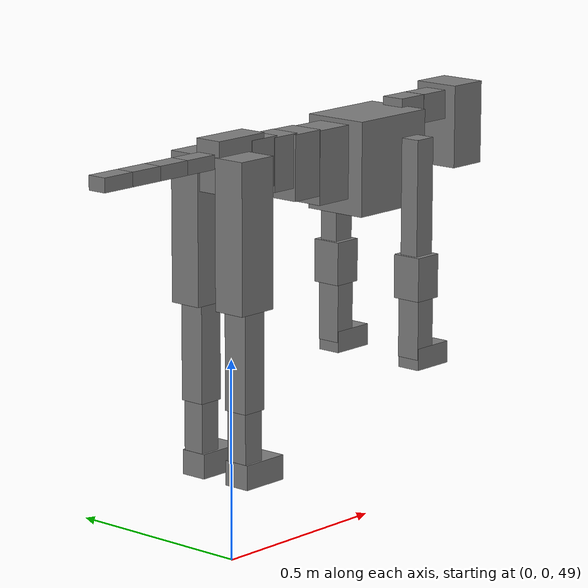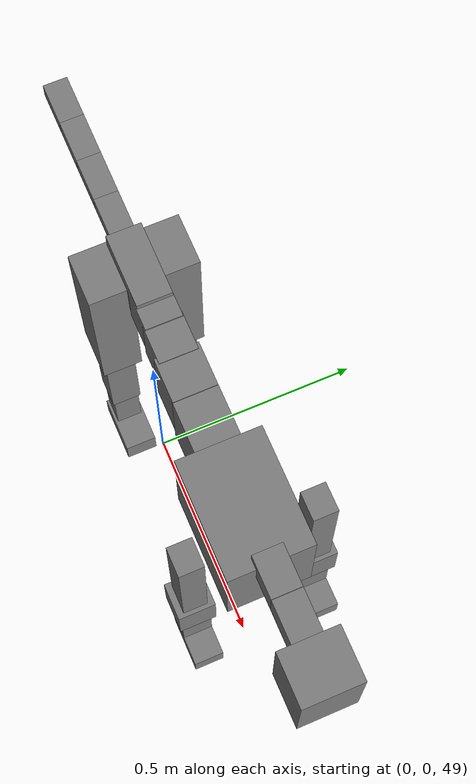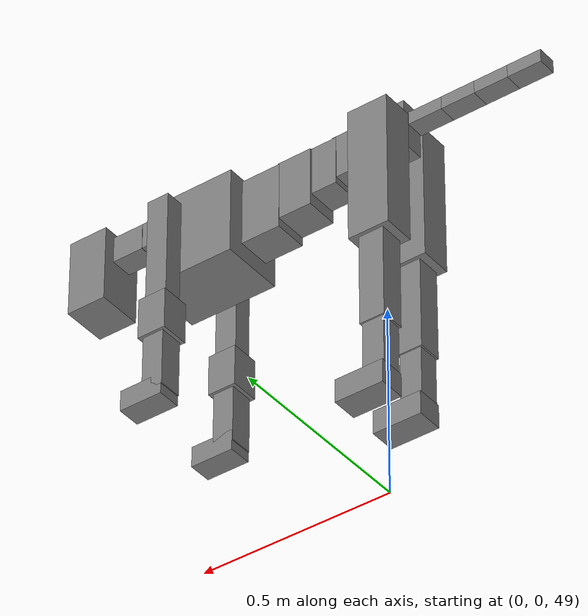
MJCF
<mujoco model="dog">

    <default>
        <joint armature="0.02" stiffness="1" damping="0.2" limited="true"/>
        <geom condim="3" friction="1 0.05 0.05" margin="0.01"/>
        <motor ctrllimited="true" ctrlrange="-1.0 1.0" forcelimited="true" gear="50"/>
    </default>

    <compiler inertiafromgeom="true" angle="radian"/>

    <option timestep="0.016" iterations="50" tolerance="1e-10" solver="Newton" jacobian="dense" cone="pyramidal"/>

    <size nconmax="20000" njmax="60000" nstack="5000000"/>
    <visual>
        <map force="0.1" zfar="30"/>
        <rgba haze="0.15 0.25 0.35 1"/>
        <quality shadowsize="2048"/>
        <global offwidth="800" offheight="800"/>
    </visual>

    <asset>
        <texture type="skybox" builtin="gradient" rgb1="0.3 0.5 0.7" rgb2="0 0 0" width="512" height="512"/>
        <texture name="texplane" type="2d" builtin="checker" rgb1=".2 .3 .4" rgb2=".1 0.15 0.2" width="512" height="512"
                 mark="cross" markrgb=".8 .8 .8"/>
        <texture name="texgeom" type="cube" builtin="flat" mark="cross" width="127" height="1278" rgb1="0.8 0.6 0.4"
                 rgb2="0.8 0.6 0.4" markrgb="1 1 1" random="0.01"/>

        <material name="matplane" reflectance="0.3" texture="texplane" texrepeat="1 1" texuniform="true"/>
        <material name="matgeom" texture="texgeom" texuniform="true" rgba="0.8 0.6 .4 1"/>
    </asset>

    <worldbody>
        <geom name="floor" pos="0 0 0" size="0 0 .25" type="plane" material="matplane" condim="3"/>

        <light directional="false" diffuse=".2 .2 .2" specular="0 0 0" pos="0 0 5" dir="0 0 -1" castshadow="false"/>
        <light mode="targetbodycom" target="torso" directional="false" diffuse=".8 .8 .8" specular="0.3 0.3 0.3"
               pos="0 0 4.0" dir="0 0 -1"/>

        <body name="root" pos="0 0 50">
            <freejoint name="root_1"/>
            <geom type="box" pos="0 0 -0.02" size="0.0774  0.0358  0.063" density="2030"/>

            <body name="spine1" pos="0.054 0 0">
                <joint name="spine1_y" axis="0 1 0" range="0 0.7" limited="true"/>
                <geom type="box" pos="0.02375 0 -0.03" size="0.04375  0.0375  0.05985" density="2030"/>

                <body name="spine2" pos="0.0612 0 0">
                    <joint name="spine2_y" axis="0 1 0" range="-0.15 0.15" limited="true"/>
                    <geom type="box" pos="0.03555  0  -0.04" size="0.04055  0.039  0.06615" density="2030"/>

                    <body name="spine3" pos="0.0730 0 0">
                        <joint name="spine3_y" axis="0 1 0" range="-0.15 0.15" limited="true"/>
                        <geom type="box" pos="0.03555  0  -0.057" size="0.04555  0.0445  0.081" density="2030"/>

                        <body name="spine4" pos="0.0780 0 0">
                            <joint name="spine4_y" axis="0 1 0" range="-0.15 0.15" limited="true"/>
                            <geom type="box" pos="0.05265  0  -0.07" size="0.05265  0.045  0.09135" density="2030"/>

                            <body name="torso" pos="0.1082 0 0">
                                <joint name="torso_y" axis="0 1 0" range="-0.15 0.15" limited="true"/>
                                <geom type="box" pos="0.11925  0  -0.085" size="0.11925  0.085  0.11745"
                                      density="2030"/>

                                <body name="neck1" pos="0.2160  0   0.0180">
                                    <joint name="neck1_y" axis="0 1 0" range="-1.2  -1" limited="true"/>
                                    <geom type="box" pos="0.0423  0  0" size="0.0423  0.03  0.036" density="2325"/>

                                    <body name="neck2" pos="0.0853  0  0">
                                        <joint name="neck2_y" axis="0 1 0" range="0.1  0" limited="true"/>
                                        <geom type="box" pos="0.0423  0  0" size="0.0423  0.03  0.036" density="2325"/>

                                        <body name="head" pos="0.0853  0  0">
                                            <joint name="head_y" axis="0 1 0" range="-0.3  -0.2" limited="true"/>
                                            <geom type="box" pos="0.0531  0  -0.055" size="0.0531  0.06  0.1044"
                                                  density="4030"/>

                                        </body>
                                    </body>
                                </body>

                                <body name="front_shoulder" pos="0.156  0   -0.0480">
                                    <joint name="front_shoulder_y" axis="0 1 0" range="-1 1.5" limited="true"/>
                                    <geom type="box" pos="0 0.13 -0.1320" size="0.0293  0.0251  0.1587" density="1158"/>
                                    <geom type="box" pos="0 -0.13 -0.1320" size="0.0293  0.0251  0.1587"
                                          density="1158"/>

                                    <body name="front_elbow" pos="0  0  -0.2640">
                                        <joint name="front_elbow_y" axis="0 1 0" range="-2 0" limited="true"/>
                                        <geom type="box" pos="0 0.13 -0.0549" size="0.0376  0.0385  0.0549"
                                              density="1081"/>
                                        <geom type="box" pos="0 -0.13 -0.0549" size="0.0376  0.0385  0.0549"
                                              density="1081"/>

                                        <body name="front_wrist" pos="0  0  -0.1097">
                                            <joint name="front_wrist_y" axis="0 1 0" range="-0.2 0" limited="true"/>
                                            <geom type="box" pos="0 0.13 -0.0685" size="0.0280  0.0311  0.0816"
                                                  density="1664"/>
                                            <geom type="box" pos="0 -0.13 -0.0685" size="0.0280  0.0311  0.0816"
                                                  density="1664"/>

                                            <body name="front_finger_end" pos="0  0  -0.1369">
                                                <joint name="front_finger_y" axis="0 1 0" range="-0.4 1"
                                                       limited="true"/>
                                                <geom type="box" pos="0.0311  0.13  -0.0126"
                                                      size="0.0570  0.0311  0.0276" density="1515"/>
                                                <geom type="box" pos="0.0311  -0.13  -0.0126"
                                                      size="0.0570  0.0311  0.0276" density="1515"/>

                                            </body>

                                        </body>
                                    </body>
                                </body>

                            </body>
                        </body>
                    </body>
                </body>
            </body>

            <body name="back_hip" pos="-0.03 0 -0.018">
                <joint name="back_hip_y" axis="0 1 0" range="-1.5 0.3" limited="true"/>
                <geom type="box" pos="0 0.07 -0.1605" size="0.0540  0.0423  0.1833" density="1154"/>
                <geom type="box" pos="0 -0.07 -0.1605" size="0.0540  0.0423  0.1833" density="1154"/>

                <body name="back_knee" pos="0  0  -0.3210">
                    <joint name="back_knee_y" axis="0 1 0" range="0 2.8" limited="true"/>
                    <geom type="box" pos="0 0.07 -0.1250" size="0.0327  0.0323  0.1405" density="1227"/>
                    <geom type="box" pos="0 -0.07 -0.1250" size="0.0327  0.0323  0.1405" density="1227"/>

                    <body name="back_ankle" pos="0  0  -0.2499">
                        <joint name="back_ankle_y" axis="0 1 0" range="-2.2 0" limited="true"/>
                        <geom type="box" pos="0 0.07 -0.0776" size="0.0284  0.0284  0.0888" density="1284"/>
                        <geom type="box" pos="0 -0.07 -0.0776" size="0.0284  0.0284  0.0888" density="1284"/>

                        <body name="back_toe_end" pos="0  0  -0.1552">
                            <joint name="back_toe_y" axis="0 1 0" range="-0.4 1" limited="true"/>
                            <geom type="box" pos="0.0346  0.07  -0.0157" size="0.0634  0.0346  0.0307" density="1515"/>
                            <geom type="box" pos="0.0346  -0.07  -0.0157" size="0.0634  0.0346  0.0307" density="1515"/>

                        </body>
                    </body>
                </body>
            </body>

            <body name="tail1" pos="-0.074 0 -0.006">
                <joint name="tail1_y" axis="0 1 0" range="-0.2 0.2" limited="true"/>
                <geom type="box" pos="-0.0536  0  0" size="0.045  0.025  0.0175" density="1587"/>

                <body name="tail2" pos="-0.09 0 0">
                    <joint name="tail2_y" axis="0 1 0" range="-0.2 0.2" limited="true"/>
                    <geom type="box" pos="-0.0536  0  0" size="0.045  0.025  0.0175" density="1587"/>

                    <body name="tail3" pos="-0.09 0 0">
                        <joint name="tail3_y" axis="0 1 0" range="-0.2 0.2" limited="true"/>
                        <geom type="box" pos="-0.0536  0  0" size="0.045  0.025  0.0175" density="1587"/>

                        <body name="tail4" pos="-0.09 0 0">
                            <joint name="tail4_y" axis="0 1 0" range="-0.2 0.2" limited="true"/>
                            <geom type="box" pos="-0.0536  0  0" size="0.045  0.025  0.0175" density="1587"/>

                        </body>
                    </body>
                </body>
            </body>
        </body>
    </worldbody>

    <actuator>
        <motor joint="spine1_y" forcerange="-150 150     "/>
        <motor joint="spine2_y" forcerange="-150 150     "/>
        <motor joint="spine3_y" forcerange="-150 150     "/>
        <motor joint="spine4_y" forcerange="-150 150     "/>
        <motor joint="torso_y" forcerange="-150 150     "/>
        <motor joint="neck1_y" forcerange="-100 100       "/>
        <motor joint="neck2_y" forcerange="-100 100       "/>
        <motor joint="head_y" forcerange="-150 150       "/>
        <motor joint="front_shoulder_y" forcerange="-128.55 138.54"/>
        <motor joint="front_elbow_y" forcerange="-192.20 187.72"/>
        <motor joint="front_wrist_y" forcerange="-135.66 113.39"/>
        <motor joint="front_finger_y" forcerange="-85.49 40.37"/>
        <motor joint="back_hip_y" forcerange="-391.13 373.45"/>
        <motor joint="back_knee_y" forcerange="-278.62 390.84"/>
        <motor joint="back_angle_y" forcerange="-128.58 225.88"/>
        <motor joint="back_toe_y" forcerange="-96.56 100.06"/>
        <motor joint="tail1_y" forcerange="-50 50     "/>
        <motor joint="tail2_y" forcerange="-50 50     "/>
        <motor joint="tail3_y" forcerange="-50 50     "/>
        <motor joint="tail4_y" forcerange="-50 50     "/>
    </actuator>
</mujoco>
